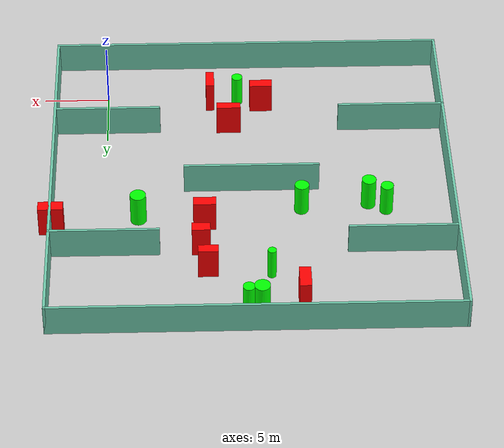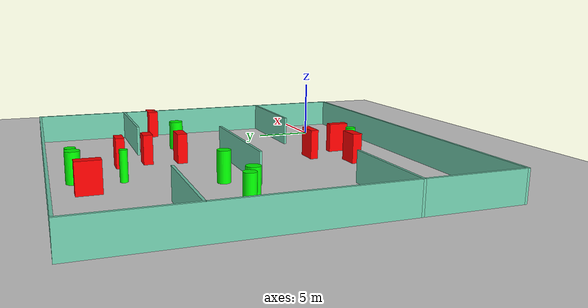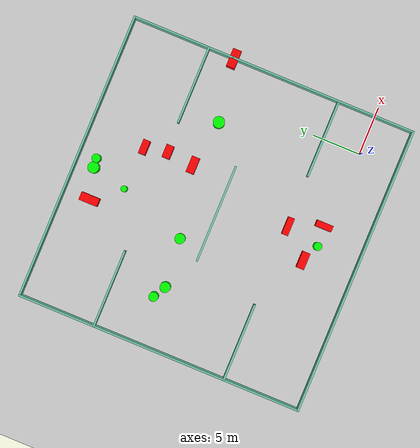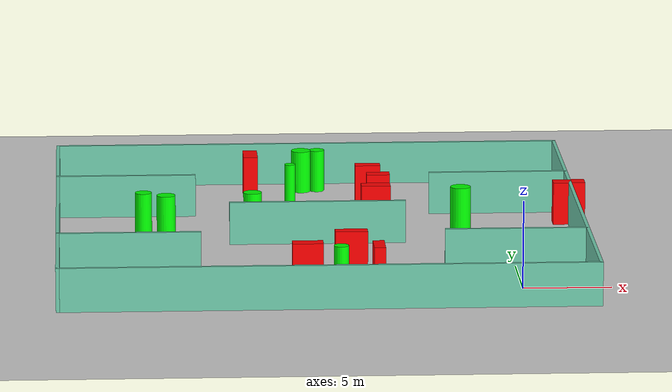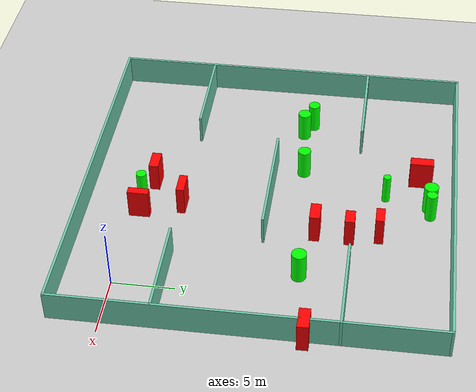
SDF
<sdf version="1.7">
 <world name="default">
  <light name="sun" type="directional">
   <pose>0 0 10 0 -0 0</pose>
   <diffuse>0.8 0.8 0.8 1</diffuse>
   <specular>0.2 0.2 0.2 1</specular>
   <attenuation>
    <range>1000</range>
    <constant>0.9</constant>
    <linear>0.01</linear>
    <quadratic>0.001</quadratic>
   </attenuation>
   <direction>-0.5 0.1 -0.9</direction>
   <spot><inner_angle>0</inner_angle><outer_angle>0</outer_angle><falloff>0</falloff></spot>
  </light>
  <model name="ground_plane">
   <static>1</static>
   <link name="link">
    <collision name="collision">
     <geometry><plane><normal>0 0 1</normal><size>100 100</size></plane></geometry>
     <surface>
      <contact><collide_bitmask>65535</collide_bitmask></contact>
      <friction><ode><mu>100</mu><mu2>50</mu2></ode></friction>
     </surface>
    </collision>
    <visual name="visual">
     <cast_shadows>0</cast_shadows>
     <geometry><plane><normal>0 0 1</normal><size>100 100</size></plane></geometry>
     <material>
      <script><uri>file://media/materials/scripts/gazebo.material</uri><name>Gazebo/Grey</name></script>
     </material>
    </visual>
   </link>
  </model>
  <gravity>0 0 -9.8</gravity>
  <magnetic_field>6e-06 2.3e-05 -4.2e-05</magnetic_field>
  <atmosphere type="adiabatic"/>
  <physics type="ode">
   <max_step_size>0.001</max_step_size>
   <real_time_factor>1</real_time_factor>
   <real_time_update_rate>1000</real_time_update_rate>
  </physics>
  <scene><ambient>0.4 0.4 0.4 1</ambient><background>0.7 0.7 0.7 1</background><shadows>1</shadows></scene>
  <spherical_coordinates>
   <surface_model>EARTH_WGS84</surface_model>
   <latitude_deg>0</latitude_deg>
   <longitude_deg>0</longitude_deg>
   <elevation>0</elevation>
   <heading_deg>0</heading_deg>
  </spherical_coordinates>
  <model name="my_base_walls">
   <link name="Wall_10">
    <collision name="Wall_10_Collision">
     <geometry><box><size>8.2 0.2 2.5</size></box></geometry>
     <pose>0 0 1.25 0 -0 0</pose>
    </collision>
    <visual name="Wall_10_Visual">
     <pose>0 0 1.25 0 -0 0</pose>
     <geometry><box><size>8.2 0.2 2.5</size></box></geometry>
     <material>
      <script><uri>file://media/materials/scripts/gazebo.material</uri><name>Gazebo/Grey</name></script>
      <ambient>0.435294 0.796078 0.67451 1</ambient>
     </material>
     <meta><layer>0</layer></meta>
    </visual>
    <pose>-11 -7 0 0 -0 0</pose>
   </link>
   <link name="Wall_12">
    <collision name="Wall_12_Collision">
     <geometry><box><size>8.2 0.2 2.5</size></box></geometry>
     <pose>0 0 1.25 0 -0 0</pose>
    </collision>
    <visual name="Wall_12_Visual">
     <pose>0 0 1.25 0 -0 0</pose>
     <geometry><box><size>8.2 0.2 2.5</size></box></geometry>
     <material>
      <script><uri>file://media/materials/scripts/gazebo.material</uri><name>Gazebo/Grey</name></script>
      <ambient>0.435294 0.796078 0.67451 1</ambient>
     </material>
     <meta><layer>0</layer></meta>
    </visual>
    <pose>-11 7 0 0 -0 0</pose>
   </link>
   <link name="Wall_14">
    <collision name="Wall_14_Collision">
     <geometry><box><size>8.2 0.2 2.5</size></box></geometry>
     <pose>0 0 1.25 0 -0 0</pose>
    </collision>
    <visual name="Wall_14_Visual">
     <pose>0 0 1.25 0 -0 0</pose>
     <geometry><box><size>8.2 0.2 2.5</size></box></geometry>
     <material>
      <script><uri>file://media/materials/scripts/gazebo.material</uri><name>Gazebo/Grey</name></script>
      <ambient>0.435294 0.796078 0.67451 1</ambient>
     </material>
     <meta><layer>0</layer></meta>
    </visual>
    <pose>11 7 0 0 -0 3.14159</pose>
   </link>
   <link name="Wall_16">
    <collision name="Wall_16_Collision">
     <geometry><box><size>10.2 0.2 2.5</size></box></geometry>
     <pose>0 0 1.25 0 -0 0</pose>
    </collision>
    <visual name="Wall_16_Visual">
     <pose>0 0 1.25 0 -0 0</pose>
     <geometry><box><size>10.2 0.2 2.5</size></box></geometry>
     <material>
      <script><uri>file://media/materials/scripts/gazebo.material</uri><name>Gazebo/Grey</name></script>
      <ambient>0.435294 0.796078 0.67451 1</ambient>
     </material>
     <meta><layer>0</layer></meta>
    </visual>
    <pose>0 0 0 0 -0 3.14159</pose>
   </link>
   <link name="Wall_2">
    <collision name="Wall_2_Collision">
     <geometry><box><size>30.2 0.2 2.5</size></box></geometry>
     <pose>0 0 1.25 0 -0 0</pose>
    </collision>
    <visual name="Wall_2_Visual">
     <pose>0 0 1.25 0 -0 0</pose>
     <geometry><box><size>30.2 0.2 2.5</size></box></geometry>
     <material>
      <script><uri>file://media/materials/scripts/gazebo.material</uri><name>Gazebo/Grey</name></script>
      <ambient>0.435294 0.796078 0.67451 1</ambient>
     </material>
     <meta><layer>0</layer></meta>
    </visual>
    <pose>0 -15 0 0 -0 3.14159</pose>
   </link>
   <link name="Wall_3">
    <collision name="Wall_3_Collision">
     <geometry><box><size>30.2 0.2 2.5</size></box></geometry>
     <pose>0 0 1.25 0 -0 0</pose>
    </collision>
    <visual name="Wall_3_Visual">
     <pose>0 0 1.25 0 -0 0</pose>
     <geometry><box><size>30.2 0.2 2.5</size></box></geometry>
     <material>
      <script><uri>file://media/materials/scripts/gazebo.material</uri><name>Gazebo/Grey</name></script>
      <ambient>0.435294 0.796078 0.67451 1</ambient>
     </material>
     <meta><layer>0</layer></meta>
    </visual>
    <pose>-15 0 0 0 -0 1.5708</pose>
   </link>
   <link name="Wall_4">
    <collision name="Wall_4_Collision">
     <geometry><box><size>30.2 0.2 2.5</size></box></geometry>
     <pose>0 0 1.25 0 -0 0</pose>
    </collision>
    <visual name="Wall_4_Visual">
     <pose>0 0 1.25 0 -0 0</pose>
     <geometry><box><size>30.2 0.2 2.5</size></box></geometry>
     <material>
      <script><uri>file://media/materials/scripts/gazebo.material</uri><name>Gazebo/Grey</name></script>
      <ambient>0.435294 0.796078 0.67451 1</ambient>
     </material>
     <meta><layer>0</layer></meta>
    </visual>
    <pose>0 15 0 0 -0 0</pose>
   </link>
   <link name="Wall_6">
    <collision name="Wall_6_Collision">
     <geometry><box><size>30.2 0.2 2.5</size></box></geometry>
     <pose>0 0 1.25 0 -0 0</pose>
    </collision>
    <visual name="Wall_6_Visual">
     <pose>0 0 1.25 0 -0 0</pose>
     <geometry><box><size>30.2 0.2 2.5</size></box></geometry>
     <material>
      <script><uri>file://media/materials/scripts/gazebo.material</uri><name>Gazebo/Grey</name></script>
      <ambient>0.435294 0.796078 0.67451 1</ambient>
     </material>
     <meta><layer>0</layer></meta>
    </visual>
    <pose>15 0 0 0 -0 1.5708</pose>
   </link>
   <link name="Wall_8">
    <collision name="Wall_8_Collision">
     <geometry><box><size>8.2 0.2 2.5</size></box></geometry>
     <pose>0 0 1.25 0 -0 0</pose>
    </collision>
    <visual name="Wall_8_Visual">
     <pose>0 0 1.25 0 -0 0</pose>
     <geometry><box><size>8.2 0.2 2.5</size></box></geometry>
     <material>
      <script><uri>file://media/materials/scripts/gazebo.material</uri><name>Gazebo/Grey</name></script>
      <ambient>0.435294 0.796078 0.67451 1</ambient>
     </material>
     <meta><layer>0</layer></meta>
    </visual>
    <pose>11 -7 0 0 -0 3.14159</pose>
   </link>
   <static>1</static>
   <pose>-11 11 0 0 -0 0</pose>
  </model>
  <model name="cylinder1">
   <static>1</static>
   <link name="link">
    <inertial>
     <mass>1</mass>
     <inertia><ixx>0.5</ixx><ixy>0</ixy><ixz>0</ixz><iyy>0.5</iyy><iyz>0</iyz><izz>1</izz></inertia>
    </inertial>
    <collision name="collision">
     <geometry><cylinder><radius>0.42271126593679154</radius><length>2.5</length></cylinder></geometry>
    </collision>
    <visual name="visual">
     <geometry><cylinder><radius>0.42271126593679154</radius><length>2.5</length></cylinder></geometry>
     <material>
      <ambient>0 1 0 1</ambient>
      <diffuse>0 1 0 1</diffuse>
      <specular>0.1 0.1 0.1 1</specular>
      <emissive>0 0 0 0</emissive>
     </material>
    </visual>
   </link>
   <pose>-10.14792992382198 0.40754653062007407 1.25 0 0 0</pose>
  </model>
  <model name="cylinder2">
   <static>1</static>
   <link name="link">
    <inertial>
     <mass>1</mass>
     <inertia><ixx>0.5</ixx><ixy>0</ixy><ixz>0</ixz><iyy>0.5</iyy><iyz>0</iyz><izz>1</izz></inertia>
    </inertial>
    <collision name="collision">
     <geometry><cylinder><radius>0.5321736117289513</radius><length>2.5</length></cylinder></geometry>
    </collision>
    <visual name="visual">
     <geometry><cylinder><radius>0.5321736117289513</radius><length>2.5</length></cylinder></geometry>
     <material>
      <ambient>0 1 0 1</ambient>
      <diffuse>0 1 0 1</diffuse>
      <specular>0.1 0.1 0.1 1</specular>
      <emissive>0 0 0 0</emissive>
     </material>
    </visual>
   </link>
   <pose>-14.680651917939576 13.40049205487406 1.25 0 0 0</pose>
  </model>
  <model name="cylinder3">
   <static>1</static>
   <link name="link">
    <inertial>
     <mass>1</mass>
     <inertia><ixx>0.5</ixx><ixy>0</ixy><ixz>0</ixz><iyy>0.5</iyy><iyz>0</iyz><izz>1</izz></inertia>
    </inertial>
    <collision name="collision">
     <geometry><cylinder><radius>0.5404355879892795</radius><length>2.5</length></cylinder></geometry>
    </collision>
    <visual name="visual">
     <geometry><cylinder><radius>0.5404355879892795</radius><length>2.5</length></cylinder></geometry>
     <material>
      <ambient>0 1 0 1</ambient>
      <diffuse>0 1 0 1</diffuse>
      <specular>0.1 0.1 0.1 1</specular>
      <emissive>0 0 0 0</emissive>
     </material>
    </visual>
   </link>
   <pose>-19.72153137480352 12.910447018707632 1.25 0 0 0</pose>
  </model>
  <model name="cylinder4">
   <static>1</static>
   <link name="link">
    <inertial>
     <mass>1</mass>
     <inertia><ixx>0.5</ixx><ixy>0</ixy><ixz>0</ixz><iyy>0.5</iyy><iyz>0</iyz><izz>1</izz></inertia>
    </inertial>
    <collision name="collision">
     <geometry><cylinder><radius>0.44331593194096464</radius><length>2.5</length></cylinder></geometry>
    </collision>
    <visual name="visual">
     <geometry><cylinder><radius>0.44331593194096464</radius><length>2.5</length></cylinder></geometry>
     <material>
      <ambient>0 1 0 1</ambient>
      <diffuse>0 1 0 1</diffuse>
      <specular>0.1 0.1 0.1 1</specular>
      <emissive>0 0 0 0</emissive>
     </material>
    </visual>
   </link>
   <pose>-10.457904877507017 24.17353804332741 1.25 0 0 0</pose>
  </model>
  <model name="cylinder5">
   <static>1</static>
   <link name="link">
    <inertial>
     <mass>1</mass>
     <inertia><ixx>0.5</ixx><ixy>0</ixy><ixz>0</ixz><iyy>0.5</iyy><iyz>0</iyz><izz>1</izz></inertia>
    </inertial>
    <collision name="collision">
     <geometry><cylinder><radius>0.4844302161058556</radius><length>2.5</length></cylinder></geometry>
    </collision>
    <visual name="visual">
     <geometry><cylinder><radius>0.4844302161058556</radius><length>2.5</length></cylinder></geometry>
     <material>
      <ambient>0 1 0 1</ambient>
      <diffuse>0 1 0 1</diffuse>
      <specular>0.1 0.1 0.1 1</specular>
      <emissive>0 0 0 0</emissive>
     </material>
    </visual>
   </link>
   <pose>-21.027622096414724 13.620693205654995 1.25 0 0 0</pose>
  </model>
  <model name="cylinder6">
   <static>1</static>
   <link name="link">
    <inertial>
     <mass>1</mass>
     <inertia><ixx>0.5</ixx><ixy>0</ixy><ixz>0</ixz><iyy>0.5</iyy><iyz>0</iyz><izz>1</izz></inertia>
    </inertial>
    <collision name="collision">
     <geometry><cylinder><radius>0.5960897354086353</radius><length>2.5</length></cylinder></geometry>
    </collision>
    <visual name="visual">
     <geometry><cylinder><radius>0.5960897354086353</radius><length>2.5</length></cylinder></geometry>
     <material>
      <ambient>0 1 0 1</ambient>
      <diffuse>0 1 0 1</diffuse>
      <specular>0.1 0.1 0.1 1</specular>
      <emissive>0 0 0 0</emissive>
     </material>
    </visual>
   </link>
   <pose>-2.487551164502932 14.248448837182753 1.25 0 0 0</pose>
  </model>
  <model name="cylinder7">
   <static>1</static>
   <link name="link">
    <inertial>
     <mass>1</mass>
     <inertia><ixx>0.5</ixx><ixy>0</ixy><ixz>0</ixz><iyy>0.5</iyy><iyz>0</iyz><izz>1</izz></inertia>
    </inertial>
    <collision name="collision">
     <geometry><cylinder><radius>0.581129925853584</radius><length>2.5</length></cylinder></geometry>
    </collision>
    <visual name="visual">
     <geometry><cylinder><radius>0.581129925853584</radius><length>2.5</length></cylinder></geometry>
     <material>
      <ambient>0 1 0 1</ambient>
      <diffuse>0 1 0 1</diffuse>
      <specular>0.1 0.1 0.1 1</specular>
      <emissive>0 0 0 0</emissive>
     </material>
    </visual>
   </link>
   <pose>-11.411323526307964 24.08005409824147 1.25 0 0 0</pose>
  </model>
  <model name="cylinder8">
   <static>1</static>
   <link name="link">
    <inertial>
     <mass>1</mass>
     <inertia><ixx>0.5</ixx><ixy>0</ixy><ixz>0</ixz><iyy>0.5</iyy><iyz>0</iyz><izz>1</izz></inertia>
    </inertial>
    <collision name="collision">
     <geometry><cylinder><radius>0.31820365010077095</radius><length>2.5</length></cylinder></geometry>
    </collision>
    <visual name="visual">
     <geometry><cylinder><radius>0.31820365010077095</radius><length>2.5</length></cylinder></geometry>
     <material>
      <ambient>0 1 0 1</ambient>
      <diffuse>0 1 0 1</diffuse>
      <specular>0.1 0.1 0.1 1</specular>
      <emissive>0 0 0 0</emissive>
     </material>
    </visual>
   </link>
   <pose>-12.222333136486125 20.454175456616692 1.25 0 0 0</pose>
  </model>
  <model name="box1">
   <static>1</static>
   <link name="link">
    <inertial>
     <mass>1</mass>
     <inertia><ixx>0.083</ixx><ixy>0</ixy><ixz>0</ixz><iyy>0.083</iyy><iyz>0</iyz><izz>0.083</izz></inertia>
    </inertial>
    <collision name="collision">
     <geometry><box><size>1.839154571980553 0.6588669359650743 2.5</size></box></geometry>
    </collision>
    <visual name="visual">
     <geometry><box><size>1.839154571980553 0.6588669359650743 2.5</size></box></geometry>
     <material>
      <ambient>1 0 0 1</ambient>
      <diffuse>1 0 0 1</diffuse>
      <specular>0.1 0.1 0.1 1</specular>
      <emissive>0 0 0 0</emissive>
     </material>
    </visual>
    <sensor name="my_contact" type="contact">
     <contact><collision>box_collision</collision><topic>__default_topic__</topic></contact>
    </sensor>
   </link>
   <pose>-9.414807999544992 3.911034783885828 1.25 0 0 0</pose>
  </model>
  <model name="box2">
   <static>1</static>
   <link name="link">
    <inertial>
     <mass>1</mass>
     <inertia><ixx>0.083</ixx><ixy>0</ixy><ixz>0</ixz><iyy>0.083</iyy><iyz>0</iyz><izz>0.083</izz></inertia>
    </inertial>
    <collision name="collision">
     <geometry><box><size>1.6965940833987792 0.8311809627510203 2.5</size></box></geometry>
    </collision>
    <visual name="visual">
     <geometry><box><size>1.6965940833987792 0.8311809627510203 2.5</size></box></geometry>
     <material>
      <ambient>1 0 0 1</ambient>
      <diffuse>1 0 0 1</diffuse>
      <specular>0.1 0.1 0.1 1</specular>
      <emissive>0 0 0 0</emissive>
     </material>
    </visual>
    <sensor name="my_contact" type="contact">
     <contact><collision>box_collision</collision><topic>__default_topic__</topic></contact>
    </sensor>
   </link>
   <pose>-7.418045591622413 15.013355385448929 1.25 0 0 0</pose>
  </model>
  <model name="box3">
   <static>1</static>
   <link name="link">
    <inertial>
     <mass>1</mass>
     <inertia><ixx>0.083</ixx><ixy>0</ixy><ixz>0</ixz><iyy>0.083</iyy><iyz>0</iyz><izz>0.083</izz></inertia>
    </inertial>
    <collision name="collision">
     <geometry><box><size>1.3548264218498343 0.7909328248764413 2.5</size></box></geometry>
    </collision>
    <visual name="visual">
     <geometry><box><size>1.3548264218498343 0.7909328248764413 2.5</size></box></geometry>
     <material>
      <ambient>1 0 0 1</ambient>
      <diffuse>1 0 0 1</diffuse>
      <specular>0.1 0.1 0.1 1</specular>
      <emissive>0 0 0 0</emissive>
     </material>
    </visual>
    <sensor name="my_contact" type="contact">
     <contact><collision>box_collision</collision><topic>__default_topic__</topic></contact>
    </sensor>
   </link>
   <pose>-7.127772359308935 17.807484417790448 1.25 0 0 0</pose>
  </model>
  <model name="box4">
   <static>1</static>
   <link name="link">
    <inertial>
     <mass>1</mass>
     <inertia><ixx>0.083</ixx><ixy>0</ixy><ixz>0</ixz><iyy>0.083</iyy><iyz>0</iyz><izz>0.083</izz></inertia>
    </inertial>
    <collision name="collision">
     <geometry><box><size>1.4881414718580932 0.7126370142180303 2.5</size></box></geometry>
    </collision>
    <visual name="visual">
     <geometry><box><size>1.4881414718580932 0.7126370142180303 2.5</size></box></geometry>
     <material>
      <ambient>1 0 0 1</ambient>
      <diffuse>1 0 0 1</diffuse>
      <specular>0.1 0.1 0.1 1</specular>
      <emissive>0 0 0 0</emissive>
     </material>
    </visual>
    <sensor name="my_contact" type="contact">
     <contact><collision>box_collision</collision><topic>__default_topic__</topic></contact>
    </sensor>
   </link>
   <pose>-7.617790240034989 20.1658761978614 1.25 0 0 0</pose>
  </model>
  <model name="box5">
   <static>1</static>
   <link name="link">
    <inertial>
     <mass>1</mass>
     <inertia><ixx>0.083</ixx><ixy>0</ixy><ixz>0</ixz><iyy>0.083</iyy><iyz>0</iyz><izz>0.083</izz></inertia>
    </inertial>
    <collision name="collision">
     <geometry><box><size>1.7342044914743064 0.8002180767814537 2.5</size></box></geometry>
    </collision>
    <visual name="visual">
     <geometry><box><size>1.7342044914743064 0.8002180767814537 2.5</size></box></geometry>
     <material>
      <ambient>1 0 0 1</ambient>
      <diffuse>1 0 0 1</diffuse>
      <specular>0.1 0.1 0.1 1</specular>
      <emissive>0 0 0 0</emissive>
     </material>
    </visual>
    <sensor name="my_contact" type="contact">
     <contact><collision>box_collision</collision><topic>__default_topic__</topic></contact>
    </sensor>
   </link>
   <pose>-11.988924352286837 1.2199732145341322 1.25 0 0 0</pose>
  </model>
  <model name="box6">
   <static>1</static>
   <link name="link">
    <inertial>
     <mass>1</mass>
     <inertia><ixx>0.083</ixx><ixy>0</ixy><ixz>0</ixz><iyy>0.083</iyy><iyz>0</iyz><izz>0.083</izz></inertia>
    </inertial>
    <collision name="collision">
     <geometry><box><size>0.6435217156611056 1.7099684800463435 2.5</size></box></geometry>
    </collision>
    <visual name="visual">
     <geometry><box><size>0.6435217156611056 1.7099684800463435 2.5</size></box></geometry>
     <material>
      <ambient>1 0 0 1</ambient>
      <diffuse>1 0 0 1</diffuse>
      <specular>0.1 0.1 0.1 1</specular>
      <emissive>0 0 0 0</emissive>
     </material>
    </visual>
    <sensor name="my_contact" type="contact">
     <contact><collision>box_collision</collision><topic>__default_topic__</topic></contact>
    </sensor>
   </link>
   <pose>-8.01693932118269 0.5968356180793082 1.25 0 0 0</pose>
  </model>
  <model name="box7">
   <static>1</static>
   <link name="link">
    <inertial>
     <mass>1</mass>
     <inertia><ixx>0.083</ixx><ixy>0</ixy><ixz>0</ixz><iyy>0.083</iyy><iyz>0</iyz><izz>0.083</izz></inertia>
    </inertial>
    <collision name="collision">
     <geometry><box><size>0.8495711309262989 1.9277009377235603 2.5</size></box></geometry>
    </collision>
    <visual name="visual">
     <geometry><box><size>0.8495711309262989 1.9277009377235603 2.5</size></box></geometry>
     <material>
      <ambient>1 0 0 1</ambient>
      <diffuse>1 0 0 1</diffuse>
      <specular>0.1 0.1 0.1 1</specular>
      <emissive>0 0 0 0</emissive>
     </material>
    </visual>
    <sensor name="my_contact" type="contact">
     <contact><collision>box_collision</collision><topic>__default_topic__</topic></contact>
    </sensor>
   </link>
   <pose>-14.49590526307922 23.245384782664363 1.25 0 0 0</pose>
  </model>
  <model name="box8">
   <static>1</static>
   <link name="link">
    <inertial>
     <mass>1</mass>
     <inertia><ixx>0.083</ixx><ixy>0</ixy><ixz>0</ixz><iyy>0.083</iyy><iyz>0</iyz><izz>0.083</izz></inertia>
    </inertial>
    <collision name="collision">
     <geometry><box><size>1.863358933777893 0.8896192945975356 2.5</size></box></geometry>
    </collision>
    <visual name="visual">
     <geometry><box><size>1.863358933777893 0.8896192945975356 2.5</size></box></geometry>
     <material>
      <ambient>1 0 0 1</ambient>
      <diffuse>1 0 0 1</diffuse>
      <specular>0.1 0.1 0.1 1</specular>
      <emissive>0 0 0 0</emissive>
     </material>
    </visual>
    <sensor name="my_contact" type="contact">
     <contact><collision>box_collision</collision><topic>__default_topic__</topic></contact>
    </sensor>
   </link>
   <pose>3.9484856271301254 15.291774367520055 1.25 0 0 0</pose>
  </model>
 </world>
</sdf>
